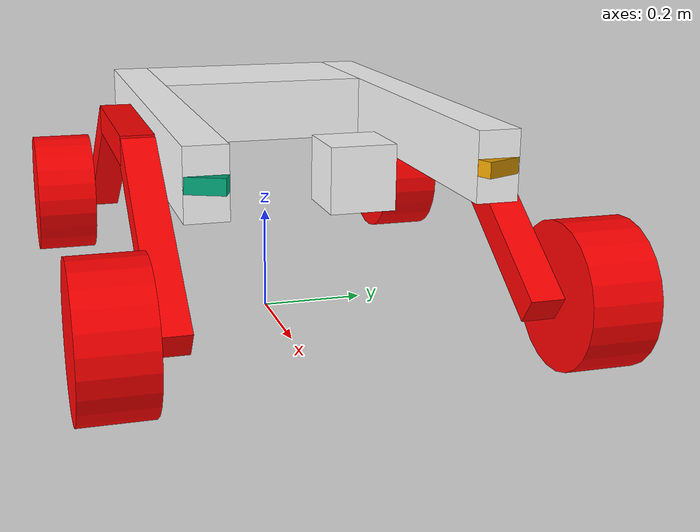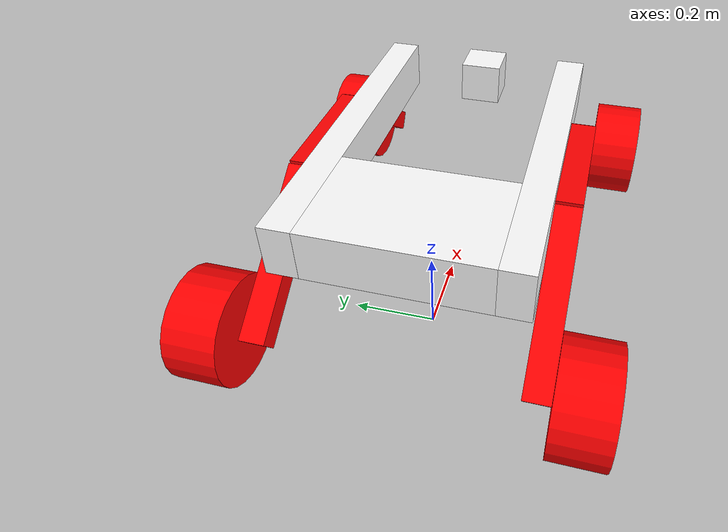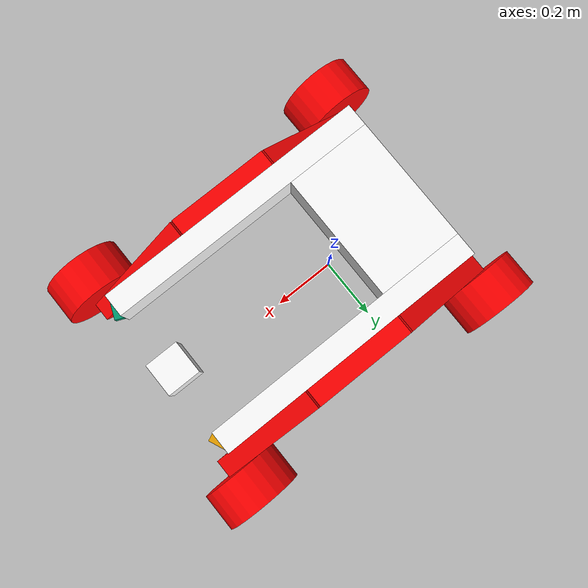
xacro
<?xml version="1.0"?>
<robot xmlns:xacro="http://www.ros.org/wiki/xacro" name="qset_rover">
    <xacro:include filename="$(find simulation)/models/gazebo.xacro"/>
    <xacro:include filename="$(find simulation)/models/realsense.xacro"/>
    <!--Materials start-->
    <material name="blue">
        <color rgba="0 0 0.8 1"/>
    </material>
    <material name="white">
        <color rgba="1 1 1 1"/>
    </material>

    <material name="red">
        <color rgba="1 0 0 1"/>
    </material>
    <!--Materials end-->
    <!--Params Start-->
    <xacro:property name="elec_box_width" value="0.386"/>
    <xacro:property name="elec_box_depth" value="0.258"/>
    <xacro:property name="elec_box_height" value="0.115"/>
    <xacro:property name="pontoon_width" value="0.069"/>
    <xacro:property name="pontoon_length" value="0.829"/>
    <xacro:property name="rocker_angle" value="0.61"/>
    <xacro:property name="rocker_horizontal_length" value="0.31"/>
    <xacro:property name="rocker_diagonal_length" value="0.39"/>
    <xacro:property name="rocker_width" value="0.057"/>
    <xacro:property name="rocker_height" value="0.051"/>
    <xacro:property name="rocker_height_offset" value="0.22"/>
    <xacro:property name="wheel_radius" value="0.121"/>
    <xacro:property name="wheel_thickness" value="0.116"/>
    <xacro:property name="arm_base_width" value="0.15"/>
    <xacro:property name="arm_base_height" value="0.1"/>
    <xacro:property name="upper_arm_length" value="0.5"/>
    <xacro:property name="forearm_length" value="0.4"/>
    <xacro:property name="forearm_lever_length" value="0.2" />
    <xacro:property name="forearm_lever_angle" value="25" /> <!-- In degrees-->
    <xacro:property name="linear_actuator_base_length" value="0.4"/>
    <xacro:property name="linear_actuator_piston_length" value="0.3"/>
    <xacro:property name="linear_actuator_travel_distance" value="0.2"/>
    <xacro:property name="linear_actuator_mount_distance_from_shoulder" value="0.1"/>
    <xacro:property name="end_effector_length" value="0.2"/>
    <xacro:property name="end_effector_thickness" value="0.05"/>
    <xacro:property name="end_effector_width" value="0.1"/>
    <xacro:property name="arm_width" value="0.1"/>
    <xacro:property name="arm_height" value="0.05"/>
    <xacro:property name="wrist_interconnect_length" value="0.05" />
    <xacro:property name="rover_total_height" value="0.4"/>

    <xacro:macro name="default_inertial" params="mass">
        <inertial>
            <mass value="${mass}"/>
            <inertia ixx="1.0" ixy="0.0" ixz="0.0"
                     iyy="1.0" iyz="0.0"
                     izz="1.0"/>
        </inertial>
    </xacro:macro>
    <xacro:macro name="pontoon" params="side reflect">
        <link name="${side}_pontoon">
            <visual>
                <geometry>
                    <box size="${pontoon_length} ${pontoon_width} ${elec_box_height}"/>
                </geometry>
                <material name="white"/>
            </visual>
            <collision>
                <geometry>
                    <box size="${pontoon_length} ${pontoon_width} ${elec_box_height}"/>
                </geometry>
            </collision>
            <xacro:default_inertial mass="10"/>
        </link>

        <joint name="elec_box_to_${side}_pontoon" type="fixed">
            <parent link="base_link"/>
            <child link="${side}_pontoon"/>
            <origin rpy="0 0 0"
                    xyz="${pontoon_length/2 - elec_box_depth} ${(elec_box_width / 2 + pontoon_width / 2) * reflect} 0"/>
        </joint>
    </xacro:macro>

    <xacro:macro name="wheel" params="side location reflect_lr reflect_fb">
        <link name="${location}_${side}_wheel">
            <visual>
                <geometry>
                    <cylinder length="${wheel_thickness}" radius="${wheel_radius}"/>
                </geometry>
                <material name="red"/>
            </visual>

            <collision>
                <geometry>
                    <cylinder length="${wheel_thickness}" radius="${wheel_radius}"/>
                </geometry>
            </collision>
            <xacro:default_inertial mass="2"/>
        </link>
        <joint name="${location}_${side}_wheel_joint" type="continuous">
            <parent link="${location}_${side}_diagonal"/>
            <child link="${location}_${side}_wheel"/>
            <origin xyz="${(rocker_diagonal_length / 2 - rocker_height / 2) * reflect_fb} ${(rocker_width / 2 + wheel_thickness / 2) * reflect_lr} 0"
                    rpy="-1.570795 0 0"/>
            <axis xyz="0 0 1"/>

        </joint>

        <transmission name="${location}_${side}_wheel_trans">
            <type>transmission_interface/SimpleTransmission</type>
            <actuator name="${location}_${side}_wheel_motor">
                <mechanicalReduction>1</mechanicalReduction>
            </actuator>
            <joint name="${location}_${side}_wheel_joint">
                <hardwareInterface>EffortJointInterface</hardwareInterface>
            </joint>
        </transmission>
        <gazebo reference="${location}_${side}_wheel">
            <kp>1000000.0</kp> <!-- kp and kd for rubber -->
            <kd>100.0</kd>
            <mu1>10.0</mu1>
            <mu2>1.0</mu2>
            <fdir1>1 0 0</fdir1> <!-- is this correct? -->
            <maxVel>1.0</maxVel>
            <minDepth>0.00</minDepth>
            <material>Gazebo/Grey</material>
        </gazebo>
    </xacro:macro>

    <xacro:macro name="armcommon">
        <link name="arm_base">
            <visual>
                <geometry>
                    <box size="${arm_base_width} ${elec_box_width} ${arm_base_height}"/>
                </geometry>
            </visual>
            <collision>
                <geometry>
                    <box size="${arm_base_width} ${elec_box_width} ${arm_base_height}"/>
                </geometry>
            </collision>
            <xacro:default_inertial mass="0.01"/>
        </link>

        <joint name="base_to_arm_base_joint" type="fixed">
            <parent link="base_link"/>
            <child link="arm_base"/>
            <origin rpy="0 0 0" xyz="${pontoon_length/2 - arm_base_width/2 + pontoon_length/2 - elec_box_depth} 0 0"/>
        </joint>

        <link name="upper_arm">
            <visual>
                <geometry>
                    <box size="${arm_height} ${arm_width} ${upper_arm_length}"/>
                </geometry>
                <origin xyz="0 0 ${upper_arm_length/2 }" rpy="0 0 0"/>
            </visual>
            <collision>
                <origin xyz="0 0 ${upper_arm_length/2 }" rpy="0 0 0"/>
                <geometry>
                    <box size="${arm_height} ${arm_width} ${upper_arm_length}"/>
                </geometry>
            </collision>
            <xacro:default_inertial mass="0.01"/>

        </link>
        <joint name="shoulder" type="revolute">
            <parent link="arm_base"/>
            <child link="upper_arm"/>
            <origin xyz="0 0 ${arm_base_height / 2}" rpy="0 0 0"/>
            <axis xyz="0 1 0"/>
            <limit lower="${-3.14159/2}" upper="${3.14159/2}" effort="100" velocity="3"/>
            <dynamics damping="2.0"/>
        </joint>
        <transmission name="shoulder_trans">
            <type>transmission_interface/SimpleTransmission</type>
            <actuator name="shoulder_motor">
                <mechanicalReduction>1</mechanicalReduction>
            </actuator>
            <joint name="shoulder">
                <hardwareInterface>EffortJointInterface</hardwareInterface>
            </joint>
        </transmission>

        <link name="forearm">
            <visual>
                <geometry>
                    <box size="${arm_height} ${arm_width} ${forearm_length}"/>
                </geometry>
                <origin xyz="0 0 ${forearm_length/2 }" rpy="0 0 0"/>
            </visual>
            <collision>
                <origin xyz="0 0 ${forearm_length/2 }" rpy="0 0 0"/>
                <geometry>
                    <box size="${arm_height} ${arm_width} ${forearm_length}"/>
                </geometry>
            </collision>
            <xacro:default_inertial mass="0.01"/>
        </link>

        <link name="wrist_interconnect">
            <visual>
                <geometry>
                    <box size="${arm_height} ${arm_width} ${wrist_interconnect_length}"/>
                </geometry>
                <origin xyz="0 0 ${wrist_interconnect_length/2 }" rpy="0 0 0"/>
            </visual>
            <collision>
                <origin xyz="0 0 ${wrist_interconnect_length/2 }" rpy="0 0 0"/>
                <geometry>
                    <box size="${arm_height} ${arm_width} ${wrist_interconnect_length}"/>
                </geometry>
            </collision>
            <xacro:default_inertial mass="0.01"/>
        </link>
        <joint name="wrist_pitch" type="revolute">
            <parent link="forearm"/>
            <child link="wrist_interconnect"/>
            <origin xyz="0 0 ${forearm_length}" rpy="0 0 0"/>
            <axis xyz="0 1 0"/>
            <limit lower="${-3.14159+0.5}" upper="${3.14159-0.5}" effort="100" velocity="3"/>
            <dynamics damping="2.0"/>
        </joint>

        <transmission name="wrist_pitch_trans">
            <type>transmission_interface/SimpleTransmission</type>
            <actuator name="wrist_pitch_motor">
                <mechanicalReduction>1</mechanicalReduction>
            </actuator>
            <joint name="wrist_pitch">
                <hardwareInterface>EffortJointInterface</hardwareInterface>
            </joint>
        </transmission>

        <link name="end_effector">
            <visual>
                <geometry>
                    <box size="${arm_height} ${arm_width} ${end_effector_length}"/>
                </geometry>
                <origin xyz="0 0 ${end_effector_length/2 }" rpy="0 0 0"/>
            </visual>
            <collision>
                <origin xyz="0 0 ${end_effector_length/2 }" rpy="0 0 0"/>
                <geometry>
                    <box size="${arm_height} ${arm_width} ${end_effector_length}"/>
                </geometry>
            </collision>
            <xacro:default_inertial mass="0.01"/>
        </link>
        <joint name="wrist_roll" type="continuous">
            <parent link="wrist_interconnect"/>
            <child link="end_effector"/>
            <origin xyz="0 0 ${wrist_interconnect_length}" rpy="0 0 0"/>
            <axis xyz="0 0 1"/>
            <dynamics damping="2.0"/>
        </joint>
        <transmission name="wrist_roll_trans">
            <type>transmission_interface/SimpleTransmission</type>
            <actuator name="wrist_pitch_motor">
                <mechanicalReduction>1</mechanicalReduction>
            </actuator>
            <joint name="wrist_roll">
                <hardwareInterface>EffortJointInterface</hardwareInterface>
            </joint>
        </transmission>
    </xacro:macro>

    <xacro:macro name="armreal">
        <xacro:armcommon />
        <joint name="forearm_forearm_lever_joint" type="fixed">
            <parent link="forearm_lever"/>
            <child link="forearm"/>
            <origin xyz="0 0 ${forearm_lever_length}" rpy="0 ${-forearm_lever_angle * pi / 180.0} 0"/>
            <axis xyz="0 1 0"/>
        </joint>
        <link name="forearm_lever">
            <visual>
                <geometry>
                    <box size="${arm_height} ${arm_width} ${forearm_lever_length}"/>
                </geometry>
                <origin xyz="0 0 ${forearm_lever_length/2 }" rpy="0 0 0"/>
            </visual>
            <collision>
                <origin xyz="0 0 ${forearm_lever_length/2 }" rpy="0 0 0"/>
                <geometry>
                    <box size="${arm_height} ${arm_width} ${forearm_lever_length}"/>
                </geometry>
            </collision>
            <xacro:default_inertial mass="0.01"/>
        </link>

        <link name="linear_actuator_base">
            <visual>
                <geometry>
                    <box size="${arm_height} ${arm_width} ${linear_actuator_base_length}"/>
                </geometry>
                <origin xyz="0 0 ${linear_actuator_base_length/2 }" rpy="0 0 0"/>
            </visual>
            <collision>
                <origin xyz="0 0 ${linear_actuator_base_length/2 }" rpy="0 0 0"/>
                <geometry>
                    <box size="${arm_height} ${arm_width} ${linear_actuator_base_length}"/>
                </geometry>
            </collision>
            <xacro:default_inertial mass="0.01"/>
        </link>
        <link name="linear_actuator_piston">
            <visual>
                <geometry>
                    <box size="${arm_height} ${arm_width} ${linear_actuator_piston_length}"/>
                </geometry>
                <origin xyz="0 0 ${linear_actuator_piston_length/2 }" rpy="0 0 0"/>
            </visual>
            <collision>
                <origin xyz="0 0 ${linear_actuator_piston_length/2 }" rpy="0 0 0"/>
                <geometry>
                    <box size="${arm_height} ${arm_width} ${linear_actuator_piston_length}"/>
                </geometry>
            </collision>
            <xacro:default_inertial mass="0.01"/>
        </link>
        <joint name="linear_actuator" type="prismatic">
            <parent link="linear_actuator_base"/>
            <child link="linear_actuator_piston"/>
            <origin xyz="0 0 ${linear_actuator_base_length}" rpy="0 0 0"/>
            <axis xyz="0 0 1"/>
            <limit lower="${-linear_actuator_travel_distance}" upper="0" effort="200" velocity="200"/>
        </joint>
        <joint name="linear_actuator_forearm_lever" type="continuous">
            <parent link="linear_actuator_piston"/>
            <child link="forearm_lever"/>
            <origin xyz="0 0 ${linear_actuator_piston_length}" rpy="0 0 0"/>
            <axis xyz="0 1 0"/>

        </joint>
        <joint name="upper_arm_linear_actuator_base" type="continuous">
            <parent link="upper_arm"/>
            <child link="linear_actuator_base"/>
            <origin xyz="0 0 ${linear_actuator_mount_distance_from_shoulder}" rpy="0 ${pi} 0"/>
            <axis xyz="0 1 0"/>

        </joint>
        <gazebo>
            <plugin name="linearElbowPlugin" filename="$(find simulation)/build/liblinearElbowPlugin.so"/>
        </gazebo>
    </xacro:macro>

    <xacro:macro name="armsimple">
       <xacro:armcommon />

        <joint name="elbow" type="revolute">
            <parent link="upper_arm"/>
            <child link="forearm"/>
            <origin xyz="0 0 ${upper_arm_length}" rpy="0 0 0"/>
            <axis xyz="0 1 0"/>
            <limit lower="${-3.14159+0.5}" upper="${3.14159-0.5}" effort="100" velocity="3"/>
            <dynamics damping="2.0"/>
        </joint>
        <transmission name="elbow_trans">
            <type>transmission_interface/SimpleTransmission</type>
            <actuator name="elbow_motor">
                <mechanicalReduction>1</mechanicalReduction>
            </actuator>
            <joint name="elbow">
                <hardwareInterface>EffortJointInterface</hardwareInterface>
            </joint>
        </transmission>

    </xacro:macro>

    <xacro:macro name="rocker" params="side reflect">
        <xacro:macro name="diagonal" params="location reflect_diag">
            <link name="${location}_${side}_diagonal">
                <visual>
                    <geometry>
                        <box size="${rocker_diagonal_length} ${rocker_width} ${rocker_height}"/>
                    </geometry>
                    <material name="red"/>
                </visual>
                <collision>
                    <geometry>
                        <box size="${rocker_diagonal_length} ${rocker_width} ${rocker_height}"/>
                    </geometry>
                </collision>
                <xacro:default_inertial mass="1"/>
            </link>
            <joint name="${side}_rocker_to_${location}_diagonal" type="fixed">
                <parent link="${side}_rocker_horizontal"/>
                <child link="${location}_${side}_diagonal"/>
                <origin rpy="0 ${rocker_angle * reflect_diag} 0 "
                        xyz="${(rocker_horizontal_length / 2  + rocker_height + 0.1)* reflect_diag} 0 ${rocker_height_offset / -2}"/>
            </joint>

        </xacro:macro>
        <link name="${side}_rocker_horizontal">
            <visual>
                <geometry>
                    <box size="${rocker_horizontal_length} ${rocker_width} ${rocker_height}"/>
                </geometry>
                <material name="red"/>
            </visual>
            <collision>
                <geometry>
                    <box size="${rocker_horizontal_length} ${rocker_width} ${rocker_height}"/>
                </geometry>
            </collision>
            <xacro:default_inertial mass="2"/>
        </link>
        <joint name="${side}_pontoon_to_rocker" type="fixed">
            <parent link="${side}_pontoon"/>
            <child link="${side}_rocker_horizontal"/>
            <origin rpy="0 0 0" xyz="-0.0 ${(pontoon_width / 2 + rocker_width / 2) * reflect} 0"/>
        </joint>
        <xacro:diagonal location="front" reflect_diag="1"/>
        <xacro:diagonal location="back" reflect_diag="-1"/>

    </xacro:macro>

    <link name="base_footprint"/>

    <link name="base_link">
        <visual>
            <geometry>
                <box size="${elec_box_depth} ${elec_box_width} ${elec_box_height}"/>
            </geometry>
            <origin rpy="0 0 0" xyz="${elec_box_depth / -2} 0 0"/>
            <material name="white"/>
        </visual>
        <collision>
            <geometry>
                <box size="${elec_box_depth} ${elec_box_width} ${elec_box_height}"/>
            </geometry>
        </collision>
        <xacro:default_inertial mass="10"/>
    </link>
    <joint name="base_joint" type="fixed">
        <parent link="base_footprint"/>
        <child link="base_link"/>
        <origin rpy="0 0 0" xyz="0 0 ${rover_total_height}"/>
    </joint>

    <link name="laser_link">
         <visual>
            <geometry>
                <box size="0.1 0.1 0.1"/>
            </geometry>
	    <origin rpy="0 0 0" xyz="${0.1 / -2} 0 0"/>
            <material name="white"/>
        </visual>
        <collision>
            <geometry>
                <box size="0.1 0.1 0.1"/>
            </geometry>
	    <origin rpy="0 0 0" xyz="${0.1 / -2} 0 0"/>
        </collision>
        <xacro:default_inertial mass="10"/>
    </link>
    <joint name="laser_joint" type="fixed">
        <parent link="base_link"/>
        <child link="laser_link"/>
        <origin rpy="0 0 0" xyz="0.6 0 0"/>
    </joint>

    <xacro:pontoon side="left" reflect="1"/>
    <xacro:pontoon side="right" reflect="-1"/>
    <xacro:rocker side="right" reflect="-1"/>
    <xacro:rocker side="left" reflect="1"/>
    <xacro:wheel side="left" location="front" reflect_lr="1" reflect_fb="1"/>
    <xacro:wheel side="right" location="front" reflect_lr="-1" reflect_fb="1"/>
    <xacro:wheel side="left" location="back" reflect_lr="1" reflect_fb="-1"/>
    <xacro:wheel side="right" location="back" reflect_lr="-1" reflect_fb="-1"/>

    <xacro:realsense suffix="left" parent="left_pontoon" x="${pontoon_length /2}" y="0" z="0" roll="0"
                     pitch="${0*3.14159}" yaw="0.4"/>
    <xacro:gazebo_realsense suffix="left"/>

    <xacro:realsense suffix="right" parent="right_pontoon" x="${pontoon_length /2}" y="0" z="0" roll="0"
                     pitch="${0*3.14159}" yaw="-0.4"/>
    <xacro:gazebo_realsense suffix="right"/>

    <gazebo>
        <plugin name="gazebo_ros_control" filename="libgazebo_ros_control.so">
            <robotNamespace>/</robotNamespace>
        </plugin>
        <plugin name="robot_gps_sim" filename="libhector_gazebo_ros_gps.so">
            <alwaysOn>true</alwaysOn>
            <updateRate>20.0</updateRate>
            <bodyName>base_link</bodyName>
            <topicName>fix</topicName>
            <velocityTopicName>gps_velocity</velocityTopicName>
            <referenceLatitude>44.2282437493331</referenceLatitude>
            <referenceLongitude>-76.49210074811806</referenceLongitude>
            <drift>0.0 0.0 0.0</drift>
            <gaussianNoise>0.000 0.000 0.000</gaussianNoise>
            <velocityDrift>0 0 0</velocityDrift>
            <velocityGaussianNoise>0.00 0.00 0.00</velocityGaussianNoise>
            <frameId>map</frameId>
        </plugin>
        <plugin name="robot_imu_sim" filename="libhector_gazebo_ros_imu.so">
            <alwaysOn>true</alwaysOn>
            <updateRate>100.0</updateRate>
            <bodyName>base_link</bodyName>
            <frameID>base_link</frameID>
            <topicName>imu</topicName>
            <xyzOffset>0.0 0.0 0.0</xyzOffset>
            <rpyOffset>0.0 0.0 0.0</rpyOffset>
            <gaussianNoise>0</gaussianNoise>
            <accelDrift>0.0 0.0 0.5</accelDrift>
            <accelGaussianNoise>0.0 0.0.0</accelGaussianNoise>
            <rateDrift>0.0 0.0 0.0</rateDrift>
            <rateGaussianNoise>0.00 0.00 0.00</rateGaussianNoise>
            <headingDrift>0.0</headingDrift>
            <headingGaussianNoise>0.00</headingGaussianNoise>
        </plugin>
        <plugin name="magnetometer" filename="libhector_gazebo_ros_magnetic.so">
            <updateRate>20.0</updateRate>
            <bodyname>base_link</bodyname>
            <topicName>magnetometerStatus</topicName>
            <referenceHeading>0.0</referenceHeading>
            <declination>3.0333</declination>
            <inclination>60.0</inclination>
            <offset>0 0 0</offset>
            <driftFrequency>0 0 0</driftFrequency>
            <gaussianNoise>0 0 0</gaussianNoise>
            <frameId>map</frameId>
        </plugin>
    </gazebo>

    <gazebo reference="laser_link">
        <sensor type="ray" name="laz">
            <always_on>true</always_on>
            <pose>0 0 0.0 0 0 0</pose>
            <visualize>true</visualize>
            <update_rate>30</update_rate>
            <ray>
                <scan>
                    <horizontal>
                        <samples>30</samples>
                        <resolution>1</resolution>
                        <min_angle>-${pi/2}</min_angle>
                        <max_angle>${pi/2}</max_angle>
                    </horizontal>
                    <vertical>
                        <samples>1</samples>
                        <resolution>1</resolution>
                        <min_angle>0</min_angle>
                        <max_angle>0</max_angle>
                    </vertical>
                </scan>
                <range>
                    <min>0.05</min>
                    <max>15</max>
                    <resolution>0.02</resolution>
                </range>
            </ray>
            <plugin name="gazebo_ros_head_hokuyo_controller" filename="libgazebo_ros_laser.so">
                <topicName>/scan</topicName>
                <frameName>laser_link</frameName>
            </plugin>
        </sensor>

    </gazebo>
</robot>

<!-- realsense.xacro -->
<robot xmlns:xacro="http://ros.org/wiki/xacro">

    <xacro:property name="realsense_size_x" value="0.026"/>
    <xacro:property name="realsense_size_y" value="0.064"/>
    <xacro:property name="realsense_size_z" value="0.026"/>

    <xacro:macro name="realsense" params="suffix parent:=body x y z roll pitch yaw">
        <link name="camera_${suffix}_optical"/>
        <link name="camera_${suffix}">
           <visual>
               <geometry>
                   <box size="${realsense_size_x} ${realsense_size_y} ${realsense_size_z}"/>
               </geometry>
           </visual>
            <collision>
                <geometry>
                    <box size="${realsense_size_x} ${realsense_size_y} ${realsense_size_z}"/>
                </geometry>
            </collision>
            <inertia>
                <mass value="0.072"/>
            </inertia>
        </link>
        <joint name="camera_${suffix}_${parent}_joint" type="fixed">
            <parent link="${parent}"/>
            <child link="camera_${suffix}"/>
            <origin xyz="${x} ${y} ${z}" rpy="${roll} ${pitch} ${yaw}"/>
        </joint>
        <joint name="camera_${suffix}_optical_joint" type="fixed">
            <parent link="camera_${suffix}"/>
            <child link="camera_${suffix}_optical"/>
            <!--
              Account for differences between camera and robot coordinate frames.
              See: https://www.ros.org/reps/rep-0103.html#coordinate-frame-conventions
            -->
            <origin xyz="0 0 0" rpy="-1.5707963267948966 0.0 -1.5707963267948966"/>
        </joint>
    </xacro:macro>
</robot>
